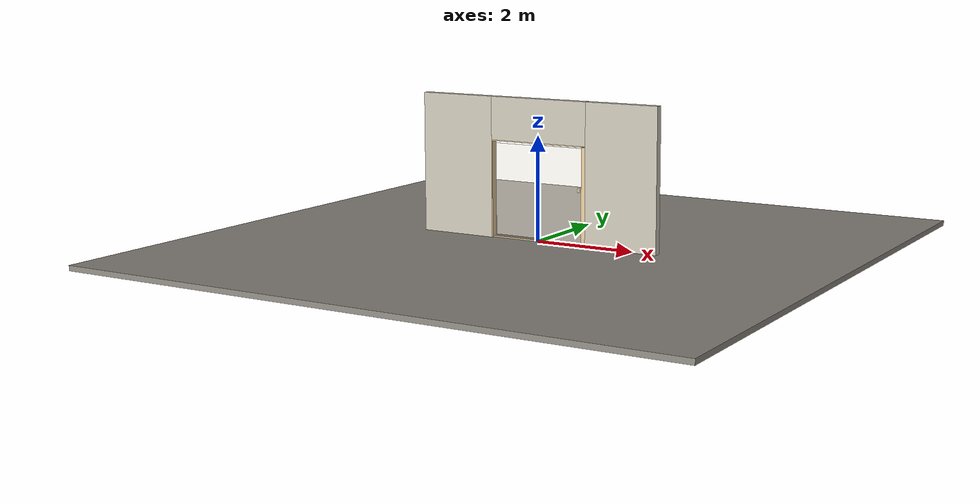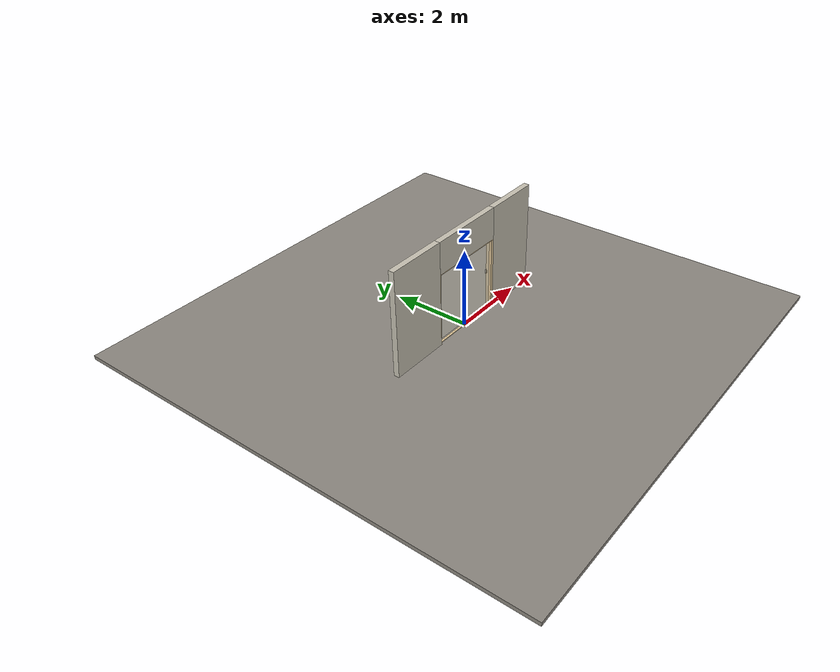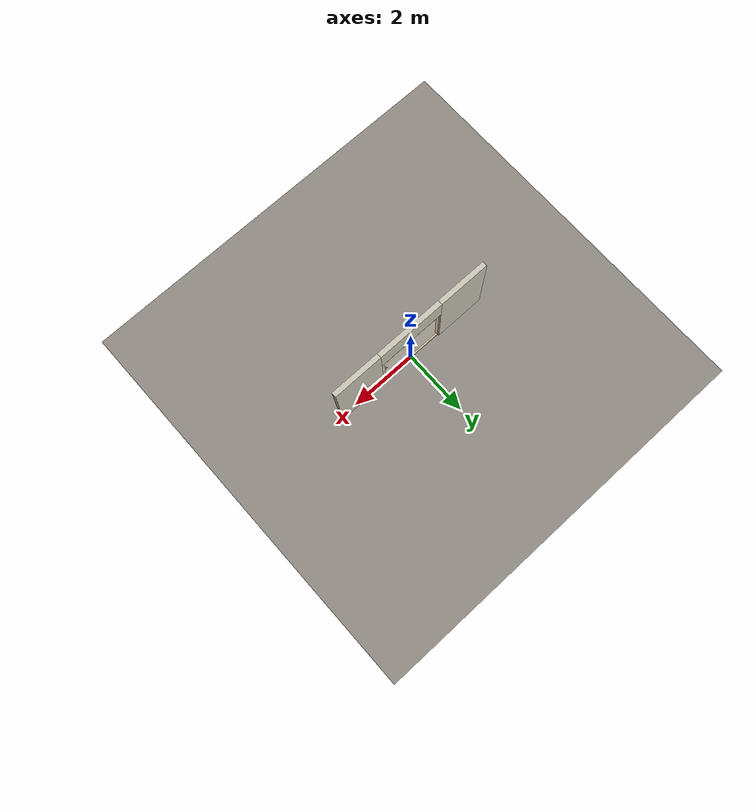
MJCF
<?xml version="1.0" ?>
<mujoco model="db0631_sliding_single_simple">
  <compiler angle="radian" meshdir="../../hardware" texturedir="../../textures" autolimits="true" inertiafromgeom="false"/>
  <option timestep="0.002" integrator="implicitfast" cone="elliptic" impratio="10" noslip_iterations="3">
    <flag multiccd="enable"/>
  </option>
  <size memory="16M"/>
  <default>
    <geom condim="4" solref="0.005 1" solimp="0.95 0.99 0.001"/>
    <joint solreflimit="0.005 1" solimplimit="0.95 0.99 0.001"/>
    <tendon solreflimit="0.005 1"/>
    <equality solref="0.002 1"/>
  </default>
  <visual>
    <headlight ambient="0.4 0.4 0.4" diffuse="0.7 0.7 0.7" specular="0.2 0.2 0.2"/>
    <quality shadowsize="4096"/>
    <map znear="0.01" zfar="60"/>
  </visual>
  <asset>
    <material name="mat_floor" rgba="0.55 0.53 0.5 1" specular="0.2" shininess="0.15" reflectance="0"/>
    <material name="mat_wall" rgba="0.78 0.76 0.7 1" specular="0.2" shininess="0.1" reflectance="0"/>
    <material name="mat_frame" rgba="0.88 0.78 0.6 1" specular="0.2" shininess="0.4" reflectance="0"/>
    <material name="mat_track" rgba="0.8 0.81 0.83 1" specular="0.8" shininess="0.6" reflectance="0.4"/>
    <material name="mat_fixed_glass" rgba="0.85 0.92 0.95 0.25" specular="0.2" shininess="0.95" reflectance="0.1"/>
    <material name="mat_fixed_shoji" rgba="0.98 0.96 0.9 0.45" specular="0.2" shininess="0.1" reflectance="0.1"/>
    <material name="mat_shikii" rgba="0.88 0.78 0.6 1" specular="0.2" shininess="0.4" reflectance="0"/>
    <material name="mat_leaf" rgba="0.98 0.96 0.9 0.45" specular="0.2" shininess="0.1" reflectance="0.1"/>
    <material name="mat_roller" rgba="0.65 0.66 0.68 1" specular="0.74" shininess="0.5" reflectance="0.36"/>
    <material name="mat_op_hinoki" rgba="0.88 0.78 0.6 1" specular="0.2" shininess="0.4" reflectance="0"/>
    <material name="mat_op_nickel_satin" rgba="0.72 0.7 0.66 1" specular="0.8" shininess="0.65" reflectance="0.4"/>
    <material name="mat_hook" rgba="0.75 0.76 0.77 1" specular="0.8" shininess="0.65" reflectance="0.4"/>
    <texture name="skybox" type="skybox" builtin="gradient" rgb1="0.6 0.7 0.85" rgb2="0.9 0.92 0.95" width="256" height="256"/>
  </asset>
  <worldbody>
    <light name="sun" pos="1.5 -2.5 4" dir="-0.3 0.5 -0.8" directional="true" diffuse="0.8 0.8 0.8" specular="0.3 0.3 0.3" castshadow="true"/>
    <light name="fill" pos="-1.5 2.5 3" dir="0.3 -0.5 -0.7" directional="true" diffuse="0.35 0.35 0.4" castshadow="false"/>
    <camera name="robot_view" pos="0 -2.425 1.609" xyaxes="1 0 0 0 0.26963 0.962964" fovy="52"/>
    <camera name="far_view" pos="0 2.425 1.609" xyaxes="-1 0 0 0 -0.26963 0.962964" fovy="52"/>
    <camera name="iso" pos="1.843 -2.037 1.997" xyaxes="0.741536 0.670913 0 -0.242917 0.268487 0.932151" fovy="46"/>
    <camera name="detail_handle" pos="1.045 -0.815 1.33" xyaxes="0.97561 0.219512 0 -0.070934 0.315262 0.94635" fovy="38"/>
    <geom name="floor" type="box" size="6 6 0.05" pos="0 0 -0.05" material="mat_floor" group="0" contype="1" conaffinity="1" friction="0.8 0.005 0.0001" density="2400"/>
    <geom name="wall_left" type="box" size="0.7605 0.0725 1.35" pos="-1.7395 0 1.35" material="mat_wall" group="0" contype="1" conaffinity="1" friction="0.6 0.005 0.0001" density="800"/>
    <geom name="wall_right" type="box" size="0.7305 0.0725 1.35" pos="1.7695 0 1.35" material="mat_wall" group="0" contype="1" conaffinity="1" friction="0.6 0.005 0.0001" density="800"/>
    <geom name="wall_header" type="box" size="1.009 0.0725 0.4105" pos="0.03 0 2.2895" material="mat_wall" group="0" contype="1" conaffinity="1" friction="0.6 0.005 0.0001" density="800"/>
    <geom name="jamb_l" type="box" size="0.0095 0.0725 0.93" pos="-0.9695 0 0.93" material="mat_frame" group="0" contype="1" conaffinity="1" friction="0.6 0.005 0.0001" density="300"/>
    <geom name="jamb_head" type="box" size="0.979 0.0725 0.0095" pos="0 0 1.8695" material="mat_frame" group="0" contype="1" conaffinity="1" friction="0.6 0.005 0.0001" density="300"/>
    <geom name="fixed_panel_glass" type="box" size="0.46 0.003 0.88" pos="-0.48 0.04 0.93" material="mat_fixed_shoji" group="0" contype="1" conaffinity="1" friction="0.6 0.005 0.0001" density="2500"/>
    <geom name="fixed_panel_stile" type="box" size="0.03 0.012 0.93" pos="-0.03 0.04 0.93" material="mat_frame" group="0" contype="1" conaffinity="1" friction="0.6 0.005 0.0001" density="1400"/>
    <geom name="shikii" type="box" size="1 0.025 0.012" pos="0.005 0 0.012" material="mat_shikii" group="0" contype="1" conaffinity="1" friction="0.6 0.005 0.0001" density="2700"/>
    <geom name="kamoi" type="box" size="1 0.025 0.03" pos="0.005 0 1.89" material="mat_shikii" group="0" contype="1" conaffinity="1" friction="0.6 0.005 0.0001" density="410"/>
    <geom name="jamb_latch_0" type="box" size="0.0395 0.0725 0.93" pos="0.9995 0 0.93" material="mat_frame" group="0" contype="1" conaffinity="1" friction="0.6 0.005 0.0001" density="300"/>
    <site name="approach_point" pos="0 -1.5 0" quat="1 0 0 0" size="0.05" rgba="0.2 0.9 0.2 0.5" group="4"/>
    <site name="goal_point" pos="0 1.5 0" quat="1 0 0 0" size="0.05" rgba="0.2 0.9 0.2 0.5" group="4"/>
    <site name="door_plane_center" pos="0 0 0.93" quat="1 0 0 0" size="0.02" rgba="0.2 0.9 0.2 0.5" group="4"/>
    <body name="leaf" pos="0.48 0 0">
      <inertial pos="0.000069 0.000001 0.927022" mass="41.07" quat="0.49999 0.499988 0.500012 -0.50001" diaginertia="3.092429354 11.090099835 14.176366241"/>
      <joint name="leaf_slide" type="slide" axis="-1 0 0" limited="true" range="0 0.95" damping="4.0535" frictionloss="157.076055" armature="0.5"/>
      <geom name="leaf_slab" type="box" size="0.475 0.015 0.9" pos="0 0 0.927" material="mat_leaf" group="0" contype="1" conaffinity="1" friction="0.3 0.005 0.0001" density="1"/>
      <geom name="leaf_pull_n" type="box" size="0.015 0.0005 0.04" pos="0.385 -0.0155 1.05" material="mat_op_hinoki" group="1" contype="0" conaffinity="0" density="1000"/>
      <geom name="leaf_ext_pull_p" type="box" size="0.025 0.0005 0.05" pos="0.385 0.0155 1.05" material="mat_op_nickel_satin" group="1" contype="0" conaffinity="0" density="1000"/>
      <site name="leaf_pull_grip_n" pos="0.385 -0.015 1.05" quat="1 0 0 0" size="0.012" rgba="0.2 0.9 0.2 0.5" group="4"/>
      <site name="leaf_ext_pull_grip_p" pos="0.385 0.015 1.05" quat="1 0 0 0" size="0.012" rgba="0.2 0.9 0.2 0.5" group="4"/>
      <site name="leaf_edge_mid" pos="0.475 0 0.927" quat="1 0 0 0" size="0.02" rgba="0.2 0.9 0.2 0.5" group="4"/>
    </body>
  </worldbody>
  <sensor>
    <jointpos name="leaf_slide_pos" joint="leaf_slide"/>
    <jointvel name="leaf_slide_vel" joint="leaf_slide"/>
  </sensor>
</mujoco>
